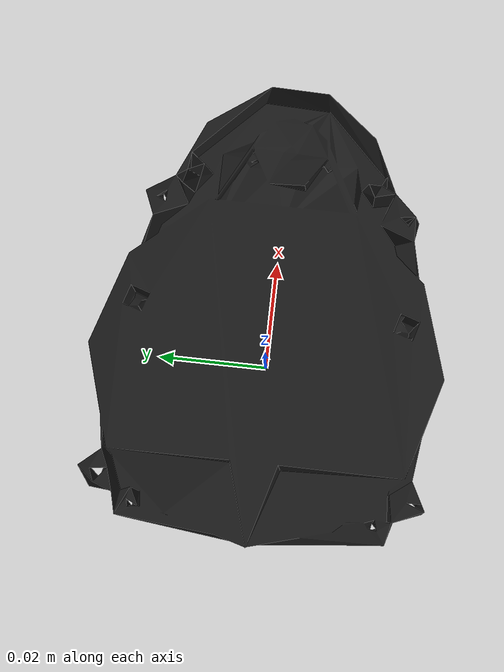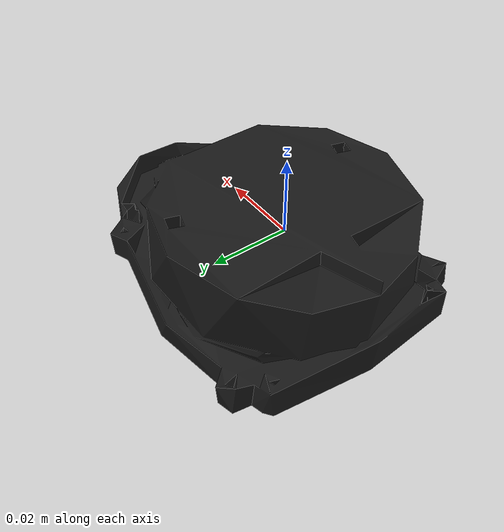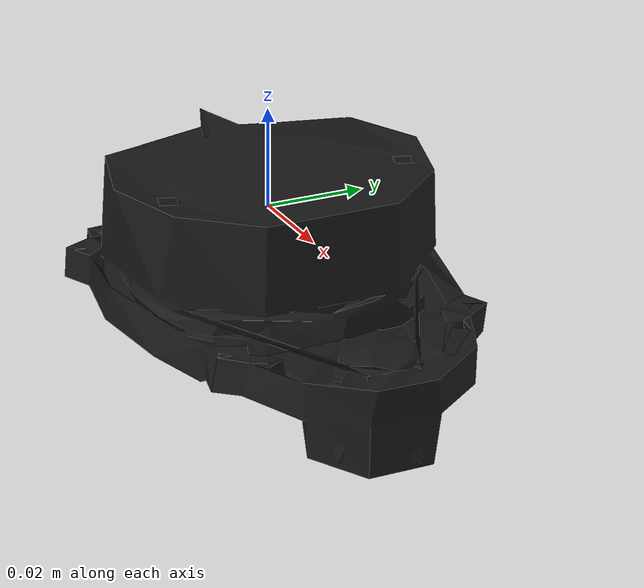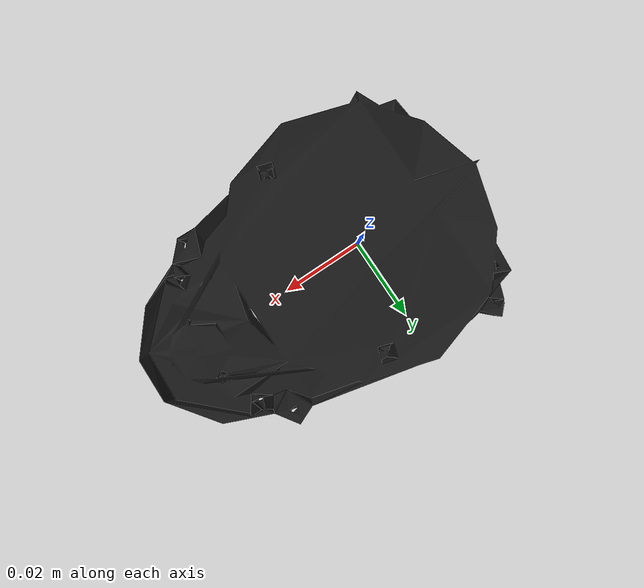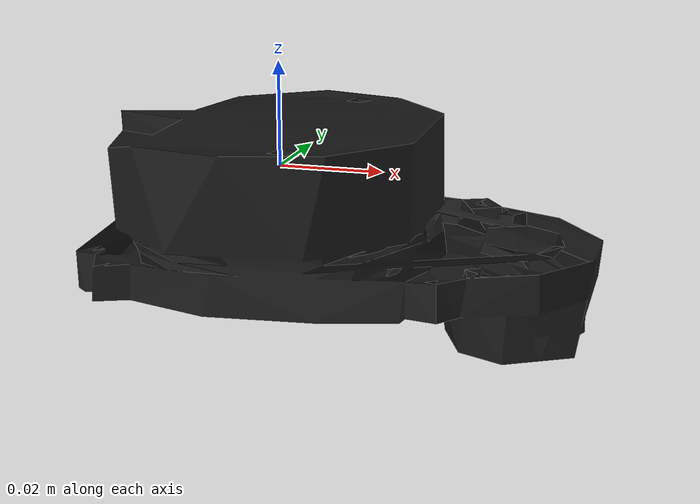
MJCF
<mujoco model="lds01">
  <compiler angle="radian" meshdir="meshes" autolimits="true"/>

  <asset>
    <material name="lds_mat" rgba="0.1 0.1 0.1 1"/>
    <mesh name="lds" file="lds.obj"/>
  </asset>

  <worldbody>
    <body name="mount">
      <inertial pos="0 0 0" mass="0.114" diaginertia="0.001 0.001 0.001"/>
      <geom name="lds01_visual" type="mesh" mesh="lds" material="lds_mat"
            contype="0" conaffinity="0"/>
      <!-- The vendor's own collision cylinder (r 55 mm, 31.5 mm long), offset 15 mm forward. -->
      <geom name="lds01_collision" type="cylinder" pos="0.015 0 -0.0065" size="0.055 0.01575" group="3"/>
      <!-- The vendor scan frame (base_scan) is the mount itself.
           Keep in step with the manifest's `frames:` entry. -->
      <site name="scan" pos="0 0 0" size="0.005"/>
    </body>
  </worldbody>
</mujoco>
